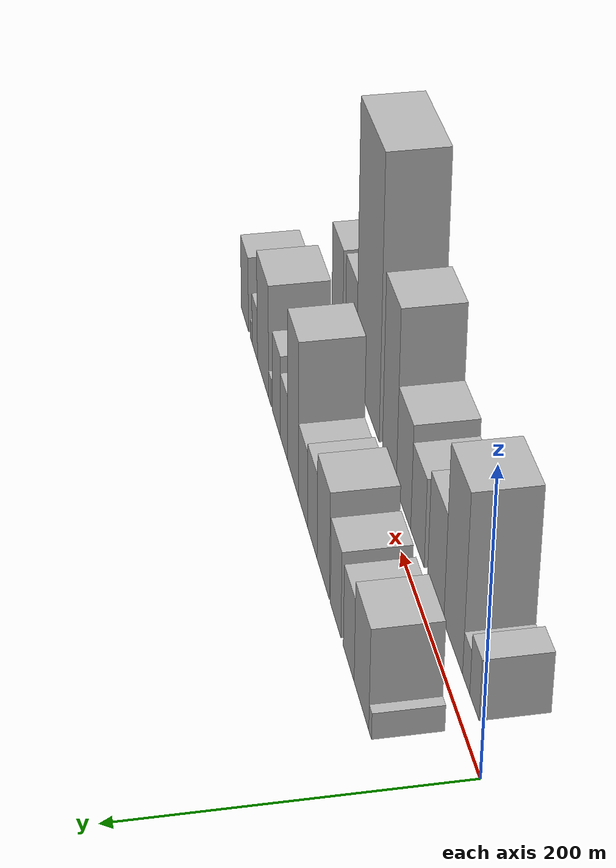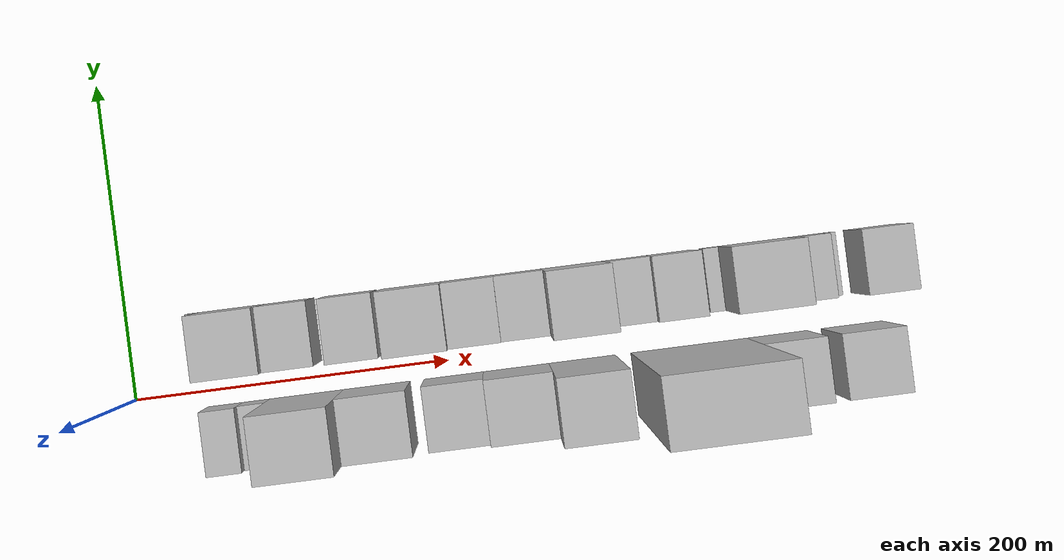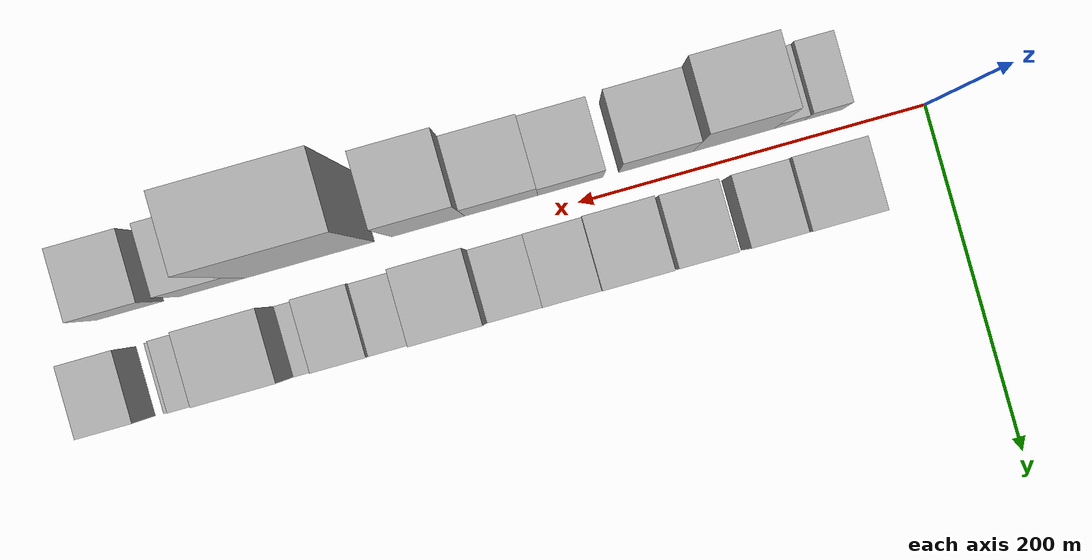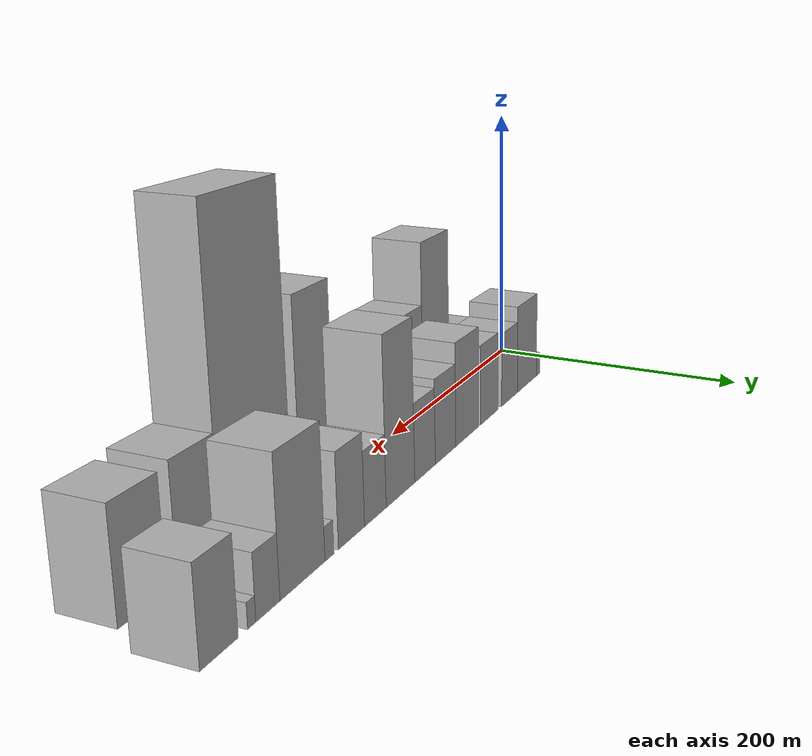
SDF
<sdf version="1.6">
 <world name="default">
  <scene>
   <sky><clouds><speed>12</speed></clouds></sky>
   <ambient>0.4 0.4 0.4 1</ambient>
   <background>0.7 0.7 0.7 1</background>
   <shadows>1</shadows>
  </scene>
  <gravity>0 0 -9.8066</gravity>
  <magnetic_field>6e-06 2.3e-05 -4.2e-05</magnetic_field>
  <physics default="0" name="default_physics" type="ode">
   <ode>
    <solver>
     <type>quick</type>
     <iters>10</iters>
     <sor>1.0</sor>
     <use_dynamic_moi_rescaling>0</use_dynamic_moi_rescaling>
    </solver>
    <constraints>
     <cfm>0</cfm>
     <erp>0.2</erp>
     <contact_max_correcting_vel>100</contact_max_correcting_vel>
     <contact_surface_layer>0.001</contact_surface_layer>
    </constraints>
   </ode>
   <max_step_size>0.004</max_step_size>
   <real_time_factor>1</real_time_factor>
   <real_time_update_rate>250</real_time_update_rate>
  </physics>
  <light name="sun" type="directional">
   <pose>0 0 10 0 0 0</pose>
   <diffuse>0.8 0.8 0.8 1</diffuse>
   <specular>0.2 0.2 0.2 1</specular>
   <attenuation>
    <range>1000</range>
    <constant>0.9</constant>
    <linear>0.01</linear>
    <quadratic>0.001</quadratic>
   </attenuation>
   <direction>-0.5 0.1 -0.9</direction>
  </light>
  <model name="building_1">
   <static>1</static>
   <pose>43.7642 30.0000 0 0.000000 0.000000 1.570796</pose>
   <link name="link">
    <pose>0 0 9.00 0 0 0</pose>
    <collision name="collision"><geometry><box><size>40.0000 7.5284 18.0000</size></box></geometry></collision>
    <visual name="visual">
     <cast_shadows>0</cast_shadows>
     <geometry><box><size>40.0000 7.5284 18.0000</size></box></geometry>
     <material>
      <script>
       <uri>model://HANNAS_wall/materials/scripts</uri>
       <uri>model://HANNAS_wall/materials/textures</uri>
       <name>vrc/HANNAS_wall</name>
      </script>
     </material>
    </visual>
   </link>
  </model>
  <model name="building_2">
   <static>1</static>
   <pose>68.0326 30.0000 0 0.000000 0.000000 1.570796</pose>
   <link name="link">
    <pose>0 0 34.50 0 0 0</pose>
    <collision name="collision"><geometry><box><size>40.0000 41.0084 69.0000</size></box></geometry></collision>
    <visual name="visual">
     <cast_shadows>0</cast_shadows>
     <geometry><box><size>40.0000 41.0084 69.0000</size></box></geometry>
     <material>
      <script>
       <uri>model://HANNAS_wall/materials/scripts</uri>
       <uri>model://HANNAS_wall/materials/textures</uri>
       <name>vrc/HANNAS_wall</name>
      </script>
     </material>
    </visual>
   </link>
  </model>
  <model name="building_3">
   <static>1</static>
   <pose>104.3769 30.0000 0 0.000000 0.000000 1.570796</pose>
   <link name="link">
    <pose>0 0 28.50 0 0 0</pose>
    <collision name="collision"><geometry><box><size>40.0000 31.6802 57.0000</size></box></geometry></collision>
    <visual name="visual">
     <cast_shadows>0</cast_shadows>
     <geometry><box><size>40.0000 31.6802 57.0000</size></box></geometry>
     <material>
      <script>
       <uri>model://HANNAS_wall/materials/scripts</uri>
       <uri>model://HANNAS_wall/materials/textures</uri>
       <name>vrc/HANNAS_wall</name>
      </script>
     </material>
    </visual>
   </link>
  </model>
  <model name="building_4">
   <static>1</static>
   <pose>143.5606 30.0000 0 0.000000 0.000000 1.570796</pose>
   <link name="link">
    <pose>0 0 30.00 0 0 0</pose>
    <collision name="collision"><geometry><box><size>40.0000 32.6871 60.0000</size></box></geometry></collision>
    <visual name="visual">
     <cast_shadows>0</cast_shadows>
     <geometry><box><size>40.0000 32.6871 60.0000</size></box></geometry>
     <material>
      <script>
       <uri>model://HANNAS_wall/materials/scripts</uri>
       <uri>model://HANNAS_wall/materials/textures</uri>
       <name>vrc/HANNAS_wall</name>
      </script>
     </material>
    </visual>
   </link>
  </model>
  <model name="building_5">
   <static>1</static>
   <pose>182.4428 30.0000 0 0.000000 0.000000 1.570796</pose>
   <link name="link">
    <pose>0 0 37.50 0 0 0</pose>
    <collision name="collision"><geometry><box><size>40.0000 39.0774 75.0000</size></box></geometry></collision>
    <visual name="visual">
     <cast_shadows>0</cast_shadows>
     <geometry><box><size>40.0000 39.0774 75.0000</size></box></geometry>
     <material>
      <script>
       <uri>model://HANNAS_wall/materials/scripts</uri>
       <uri>model://HANNAS_wall/materials/textures</uri>
       <name>vrc/HANNAS_wall</name>
      </script>
     </material>
    </visual>
   </link>
  </model>
  <model name="building_6">
   <static>1</static>
   <pose>218.1601 30.0000 0 0.000000 0.000000 1.570796</pose>
   <link name="link">
    <pose>0 0 30.00 0 0 0</pose>
    <collision name="collision"><geometry><box><size>40.0000 32.3571 60.0000</size></box></geometry></collision>
    <visual name="visual">
     <cast_shadows>0</cast_shadows>
     <geometry><box><size>40.0000 32.3571 60.0000</size></box></geometry>
     <material>
      <script>
       <uri>model://HANNAS_wall/materials/scripts</uri>
       <uri>model://HANNAS_wall/materials/textures</uri>
       <name>vrc/HANNAS_wall</name>
      </script>
     </material>
    </visual>
   </link>
  </model>
  <model name="building_7">
   <static>1</static>
   <pose>249.4875 30.0000 0 0.000000 0.000000 1.570796</pose>
   <link name="link">
    <pose>0 0 27.00 0 0 0</pose>
    <collision name="collision"><geometry><box><size>40.0000 30.2976 54.0000</size></box></geometry></collision>
    <visual name="visual">
     <cast_shadows>0</cast_shadows>
     <geometry><box><size>40.0000 30.2976 54.0000</size></box></geometry>
     <material>
      <script>
       <uri>model://HANNAS_wall/materials/scripts</uri>
       <uri>model://HANNAS_wall/materials/textures</uri>
       <name>vrc/HANNAS_wall</name>
      </script>
     </material>
    </visual>
   </link>
  </model>
  <model name="building_8">
   <static>1</static>
   <pose>283.9996 30.0000 0 0.000000 0.000000 1.570796</pose>
   <link name="link">
    <pose>0 0 55.50 0 0 0</pose>
    <collision name="collision"><geometry><box><size>40.0000 38.7266 111.0000</size></box></geometry></collision>
    <visual name="visual">
     <cast_shadows>0</cast_shadows>
     <geometry><box><size>40.0000 38.7266 111.0000</size></box></geometry>
     <material>
      <script>
       <uri>model://HANNAS_wall/materials/scripts</uri>
       <uri>model://HANNAS_wall/materials/textures</uri>
       <name>vrc/HANNAS_wall</name>
      </script>
     </material>
    </visual>
   </link>
  </model>
  <model name="building_9">
   <static>1</static>
   <pose>316.9117 30.0000 0 0.000000 0.000000 1.570796</pose>
   <link name="link">
    <pose>0 0 24.00 0 0 0</pose>
    <collision name="collision"><geometry><box><size>40.0000 27.0976 48.0000</size></box></geometry></collision>
    <visual name="visual">
     <cast_shadows>0</cast_shadows>
     <geometry><box><size>40.0000 27.0976 48.0000</size></box></geometry>
     <material>
      <script>
       <uri>model://HANNAS_wall/materials/scripts</uri>
       <uri>model://HANNAS_wall/materials/textures</uri>
       <name>vrc/HANNAS_wall</name>
      </script>
     </material>
    </visual>
   </link>
  </model>
  <model name="building_10">
   <static>1</static>
   <pose>345.7144 30.0000 0 0.000000 0.000000 1.570796</pose>
   <link name="link">
    <pose>0 0 30.00 0 0 0</pose>
    <collision name="collision"><geometry><box><size>40.0000 30.5079 60.0000</size></box></geometry></collision>
    <visual name="visual">
     <cast_shadows>0</cast_shadows>
     <geometry><box><size>40.0000 30.5079 60.0000</size></box></geometry>
     <material>
      <script>
       <uri>model://HANNAS_wall/materials/scripts</uri>
       <uri>model://HANNAS_wall/materials/textures</uri>
       <name>vrc/HANNAS_wall</name>
      </script>
     </material>
    </visual>
   </link>
  </model>
  <model name="building_11">
   <static>1</static>
   <pose>370.7716 30.0000 0 0.000000 0.000000 1.570796</pose>
   <link name="link">
    <pose>0 0 10.50 0 0 0</pose>
    <collision name="collision"><geometry><box><size>40.0000 9.6065 21.0000</size></box></geometry></collision>
    <visual name="visual">
     <cast_shadows>0</cast_shadows>
     <geometry><box><size>40.0000 9.6065 21.0000</size></box></geometry>
     <material>
      <script>
       <uri>model://HANNAS_wall/materials/scripts</uri>
       <uri>model://HANNAS_wall/materials/textures</uri>
       <name>vrc/HANNAS_wall</name>
      </script>
     </material>
    </visual>
   </link>
  </model>
  <model name="building_12">
   <static>1</static>
   <pose>398.2686 30.0000 0 0.000000 0.000000 1.570796</pose>
   <link name="link">
    <pose>0 0 42.00 0 0 0</pose>
    <collision name="collision"><geometry><box><size>40.0000 45.3874 84.0000</size></box></geometry></collision>
    <visual name="visual">
     <cast_shadows>0</cast_shadows>
     <geometry><box><size>40.0000 45.3874 84.0000</size></box></geometry>
     <material>
      <script>
       <uri>model://HANNAS_wall/materials/scripts</uri>
       <uri>model://HANNAS_wall/materials/textures</uri>
       <name>vrc/HANNAS_wall</name>
      </script>
     </material>
    </visual>
   </link>
  </model>
  <model name="building_13">
   <static>1</static>
   <pose>432.0175 30.0000 0 0.000000 0.000000 1.570796</pose>
   <link name="link">
    <pose>0 0 19.50 0 0 0</pose>
    <collision name="collision"><geometry><box><size>40.0000 22.1104 39.0000</size></box></geometry></collision>
    <visual name="visual">
     <cast_shadows>0</cast_shadows>
     <geometry><box><size>40.0000 22.1104 39.0000</size></box></geometry>
     <material>
      <script>
       <uri>model://HANNAS_wall/materials/scripts</uri>
       <uri>model://HANNAS_wall/materials/textures</uri>
       <name>vrc/HANNAS_wall</name>
      </script>
     </material>
    </visual>
   </link>
  </model>
  <model name="building_14">
   <static>1</static>
   <pose>446.6942 30.0000 0 0.000000 0.000000 1.570796</pose>
   <link name="link">
    <pose>0 0 7.50 0 0 0</pose>
    <collision name="collision"><geometry><box><size>40.0000 7.2430 15.0000</size></box></geometry></collision>
    <visual name="visual">
     <cast_shadows>0</cast_shadows>
     <geometry><box><size>40.0000 7.2430 15.0000</size></box></geometry>
     <material>
      <script>
       <uri>model://HANNAS_wall/materials/scripts</uri>
       <uri>model://HANNAS_wall/materials/textures</uri>
       <name>vrc/HANNAS_wall</name>
      </script>
     </material>
    </visual>
   </link>
  </model>
  <model name="building_15">
   <static>1</static>
   <pose>473.9681 30.0000 0 0.000000 0.000000 1.570796</pose>
   <link name="link">
    <pose>0 0 28.50 0 0 0</pose>
    <collision name="collision"><geometry><box><size>40.0000 31.3047 57.0000</size></box></geometry></collision>
    <visual name="visual">
     <cast_shadows>0</cast_shadows>
     <geometry><box><size>40.0000 31.3047 57.0000</size></box></geometry>
     <material>
      <script>
       <uri>model://HANNAS_wall/materials/scripts</uri>
       <uri>model://HANNAS_wall/materials/textures</uri>
       <name>vrc/HANNAS_wall</name>
      </script>
     </material>
    </visual>
   </link>
  </model>
  <model name="building_16">
   <static>1</static>
   <pose>56.0667 -30.0000 0 0.000000 0.000000 1.570796</pose>
   <link name="link">
    <pose>0 0 21.00 0 0 0</pose>
    <collision name="collision"><geometry><box><size>40.0000 22.1335 42.0000</size></box></geometry></collision>
    <visual name="visual">
     <cast_shadows>0</cast_shadows>
     <geometry><box><size>40.0000 22.1335 42.0000</size></box></geometry>
     <material>
      <script>
       <uri>model://HANNAS_wall/materials/scripts</uri>
       <uri>model://HANNAS_wall/materials/textures</uri>
       <name>vrc/HANNAS_wall</name>
      </script>
     </material>
    </visual>
   </link>
  </model>
  <model name="building_17">
   <static>1</static>
   <pose>75.7608 -30.0000 0 0.000000 0.000000 1.570796</pose>
   <link name="link">
    <pose>0 0 15.00 0 0 0</pose>
    <collision name="collision"><geometry><box><size>40.0000 17.2546 30.0000</size></box></geometry></collision>
    <visual name="visual">
     <cast_shadows>0</cast_shadows>
     <geometry><box><size>40.0000 17.2546 30.0000</size></box></geometry>
     <material>
      <script>
       <uri>model://HANNAS_wall/materials/scripts</uri>
       <uri>model://HANNAS_wall/materials/textures</uri>
       <name>vrc/HANNAS_wall</name>
      </script>
     </material>
    </visual>
   </link>
  </model>
  <model name="building_18">
   <static>1</static>
   <pose>107.8371 -30.0000 0 0.000000 0.000000 1.570796</pose>
   <link name="link">
    <pose>0 0 61.50 0 0 0</pose>
    <collision name="collision"><geometry><box><size>40.0000 46.8979 123.0000</size></box></geometry></collision>
    <visual name="visual">
     <cast_shadows>0</cast_shadows>
     <geometry><box><size>40.0000 46.8979 123.0000</size></box></geometry>
     <material>
      <script>
       <uri>model://HANNAS_wall/materials/scripts</uri>
       <uri>model://HANNAS_wall/materials/textures</uri>
       <name>vrc/HANNAS_wall</name>
      </script>
     </material>
    </visual>
   </link>
  </model>
  <model name="building_19">
   <static>1</static>
   <pose>152.6218 -30.0000 0 0.000000 0.000000 1.570796</pose>
   <link name="link">
    <pose>0 0 37.50 0 0 0</pose>
    <collision name="collision"><geometry><box><size>40.0000 42.6716 75.0000</size></box></geometry></collision>
    <visual name="visual">
     <cast_shadows>0</cast_shadows>
     <geometry><box><size>40.0000 42.6716 75.0000</size></box></geometry>
     <material>
      <script>
       <uri>model://HANNAS_wall/materials/scripts</uri>
       <uri>model://HANNAS_wall/materials/textures</uri>
       <name>vrc/HANNAS_wall</name>
      </script>
     </material>
    </visual>
   </link>
  </model>
  <model name="building_20">
   <static>1</static>
   <pose>201.7921 -30.0000 0 0.000000 0.000000 1.570796</pose>
   <link name="link">
    <pose>0 0 31.50 0 0 0</pose>
    <collision name="collision"><geometry><box><size>40.0000 37.6690 63.0000</size></box></geometry></collision>
    <visual name="visual">
     <cast_shadows>0</cast_shadows>
     <geometry><box><size>40.0000 37.6690 63.0000</size></box></geometry>
     <material>
      <script>
       <uri>model://HANNAS_wall/materials/scripts</uri>
       <uri>model://HANNAS_wall/materials/textures</uri>
       <name>vrc/HANNAS_wall</name>
      </script>
     </material>
    </visual>
   </link>
  </model>
  <model name="building_21">
   <static>1</static>
   <pose>241.5884 -30.0000 0 0.000000 0.000000 1.570796</pose>
   <link name="link">
    <pose>0 0 37.50 0 0 0</pose>
    <collision name="collision"><geometry><box><size>40.0000 41.9237 75.0000</size></box></geometry></collision>
    <visual name="visual">
     <cast_shadows>0</cast_shadows>
     <geometry><box><size>40.0000 41.9237 75.0000</size></box></geometry>
     <material>
      <script>
       <uri>model://HANNAS_wall/materials/scripts</uri>
       <uri>model://HANNAS_wall/materials/textures</uri>
       <name>vrc/HANNAS_wall</name>
      </script>
     </material>
    </visual>
   </link>
  </model>
  <model name="building_22">
   <static>1</static>
   <pose>283.7074 -30.0000 0 0.000000 0.000000 1.570796</pose>
   <link name="link">
    <pose>0 0 64.50 0 0 0</pose>
    <collision name="collision"><geometry><box><size>40.0000 42.3142 129.0000</size></box></geometry></collision>
    <visual name="visual">
     <cast_shadows>0</cast_shadows>
     <geometry><box><size>40.0000 42.3142 129.0000</size></box></geometry>
     <material>
      <script>
       <uri>model://HANNAS_wall/materials/scripts</uri>
       <uri>model://HANNAS_wall/materials/textures</uri>
       <name>vrc/HANNAS_wall</name>
      </script>
     </material>
    </visual>
   </link>
  </model>
  <model name="building_23">
   <static>1</static>
   <pose>351.8930 -30.0000 0 0.000000 0.000000 1.570796</pose>
   <link name="link">
    <pose>0 0 102.00 0 0 0</pose>
    <collision name="collision"><geometry><box><size>40.0000 74.0571 204.0000</size></box></geometry></collision>
    <visual name="visual">
     <cast_shadows>0</cast_shadows>
     <geometry><box><size>40.0000 74.0571 204.0000</size></box></geometry>
     <material>
      <script>
       <uri>model://HANNAS_wall/materials/scripts</uri>
       <uri>model://HANNAS_wall/materials/textures</uri>
       <name>vrc/HANNAS_wall</name>
      </script>
     </material>
    </visual>
   </link>
  </model>
  <model name="building_24">
   <static>1</static>
   <pose>408.2047 -30.0000 0 0.000000 0.000000 1.570796</pose>
   <link name="link">
    <pose>0 0 36.00 0 0 0</pose>
    <collision name="collision"><geometry><box><size>40.0000 38.5661 72.0000</size></box></geometry></collision>
    <visual name="visual">
     <cast_shadows>0</cast_shadows>
     <geometry><box><size>40.0000 38.5661 72.0000</size></box></geometry>
     <material>
      <script>
       <uri>model://HANNAS_wall/materials/scripts</uri>
       <uri>model://HANNAS_wall/materials/textures</uri>
       <name>vrc/HANNAS_wall</name>
      </script>
     </material>
    </visual>
   </link>
  </model>
  <model name="building_25">
   <static>1</static>
   <pose>455.9298 -30.0000 0 0.000000 0.000000 1.570796</pose>
   <link name="link">
    <pose>0 0 34.50 0 0 0</pose>
    <collision name="collision"><geometry><box><size>40.0000 38.8841 69.0000</size></box></geometry></collision>
    <visual name="visual">
     <cast_shadows>0</cast_shadows>
     <geometry><box><size>40.0000 38.8841 69.0000</size></box></geometry>
     <material>
      <script>
       <uri>model://HANNAS_wall/materials/scripts</uri>
       <uri>model://HANNAS_wall/materials/textures</uri>
       <name>vrc/HANNAS_wall</name>
      </script>
     </material>
    </visual>
   </link>
  </model>
 </world>
</sdf>
